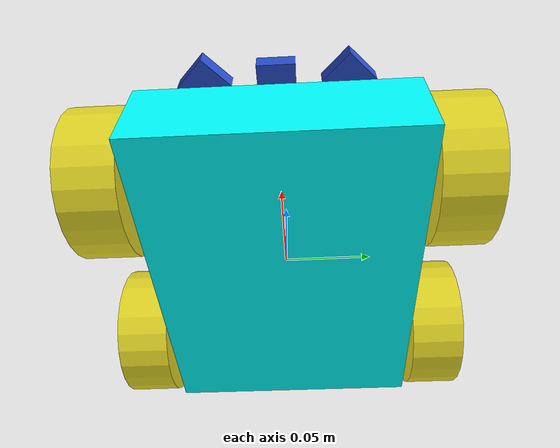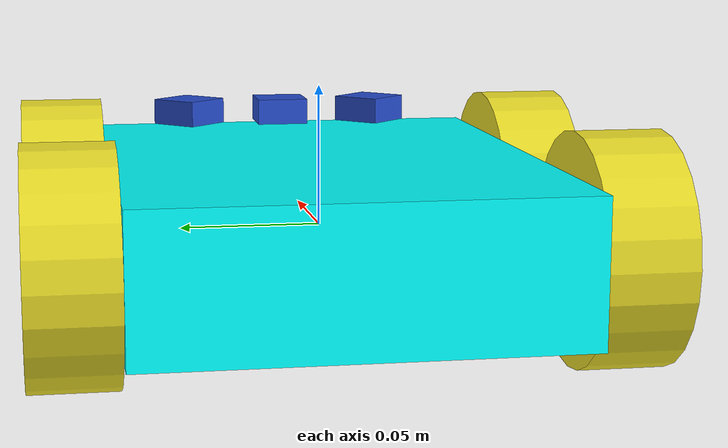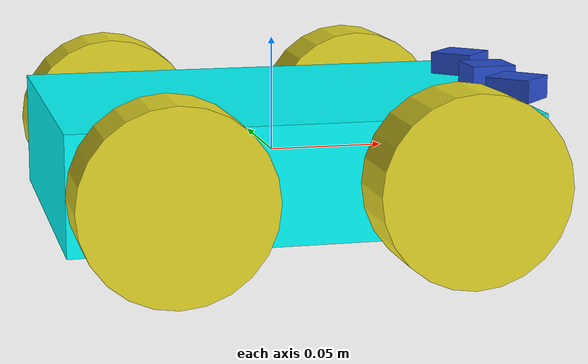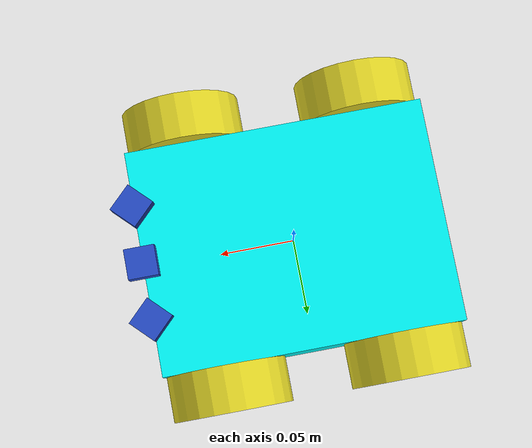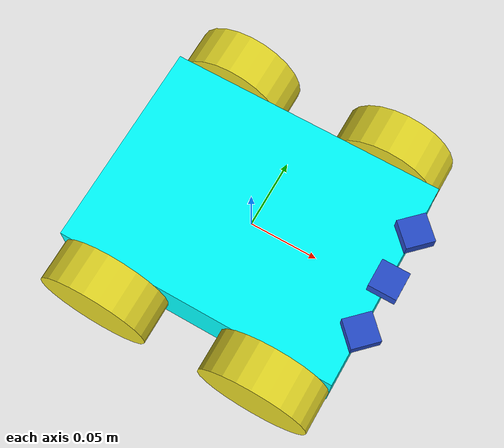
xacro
<?xml version='1.0'?>

<robot name="robot" xmlns:xacro="http://www.ros.org/wiki/xacro">

  <xacro:property name="camera_width" value="0.02"/>
  <xacro:property name="camera_length" value="0.02"/>
  <xacro:property name="camera_height" value="0.01"/>
  <xacro:property name="camera_mass" value="0.01"/>

  <!-- Inserting two cameras right and left -->

  <xacro:property name="lcam_width" value="0.02"/>
  <xacro:property name="lcam_length" value="0.02"/>
  <xacro:property name="lcam_height" value="0.01"/>
  <xacro:property name="lcam_mass" value="0.01"/>

  <xacro:property name="rcam_width" value="0.02"/>
  <xacro:property name="rcam_length" value="0.02"/>
  <xacro:property name="rcam_height" value="0.01"/>
  <xacro:property name="rcam_mass" value="0.01"/>

  <xacro:property name="chassis_width" value="0.15"/>
  <xacro:property name="chassis_length" value="0.2"/>
  <xacro:property name="chassis_height" value="0.05"/>
  <xacro:property name="chassis_mass" value="0.5"/>
  <xacro:property name="wheel_radius" value="0.04"/>
  <xacro:property name="wheel_width" value="0.03"/>
  <xacro:property name="wheel_mass" value="0.025"/>

  <xacro:include filename="$(find robbie)/urdf/macros.xacro"/>
  <xacro:include filename="$(find robbie)/urdf/materials.xacro"/>

  <link name='chassis'>
    <xacro:box_inertial name="chassis" m="${chassis_mass}" x="${chassis_length}" y="${chassis_width}" z="${chassis_height}"/>
    <collision name='chassis_collision'>
      <geometry>
        <box size="${chassis_length} ${chassis_width} ${chassis_height}"/>
      </geometry>
    </collision>
    <visual name='chassis_visual'>
      <origin xyz="0 0 0" rpy=" 0 0 0"/>
      <geometry>
        <box size="${chassis_length} ${chassis_width} ${chassis_height}"/>
      </geometry>
      <material name="Cyan">
        <color rgba="0 1.0 1.0 1.0"/>
      </material>
    </visual>
  </link>

  <link name='wheel_FR'>
    <xacro:cylinder_inertial name="wheel_FR" m="${wheel_mass}" r="${wheel_radius}" h="${wheel_width}"/>
    <collision name='wheel_FR_collision'>
      <origin xyz="0 0 0" rpy="1.5708 0 0"/>
      <geometry>
        <cylinder radius="${wheel_radius}" length="${wheel_width}"/>
      </geometry>
    </collision>
    <visual name='wheel_FR_visual'>
      <origin xyz="0 0 0" rpy="1.5708 0 0"/>
      <geometry>
        <cylinder radius="${wheel_radius}" length="${wheel_width}"/>
      </geometry>
    </visual>
  </link>

  <link name='wheel_FL'>
    <xacro:cylinder_inertial name="wheel_FL" m="${wheel_mass}" r="${wheel_radius}" h="${wheel_width}"/>
    <collision name='wheel_FL_collision'>
      <origin xyz="0 0 0" rpy="1.5708 0 0"/>
      <geometry>
        <cylinder radius="${wheel_radius}" length="${wheel_width}"/>
      </geometry>
    </collision>
    <visual name='wheel_FL_visual'>
      <origin xyz="0 0 0" rpy="1.5708 0 0"/>
      <geometry>
        <cylinder radius="${wheel_radius}" length="${wheel_width}"/>
      </geometry>
    </visual>
  </link>

  <link name='wheel_RR'>
    <xacro:cylinder_inertial name="wheel_RR" m="${wheel_mass}" r="${wheel_radius}" h="${wheel_width}"/>
    <collision name='wheel_RR_collision'>
      <origin xyz="0 0 0" rpy="1.5708 0 0"/>
      <geometry>
        <cylinder radius="${wheel_radius}" length="${wheel_width}"/>
      </geometry>
    </collision>
    <visual name='wheel_RR_visual'>
      <origin xyz="0 0 0" rpy="1.5708 0 0"/>
      <geometry>
        <cylinder radius="${wheel_radius}" length="${wheel_width}"/>
      </geometry>
    </visual>
  </link>

  <link name='wheel_RL'>
    <xacro:cylinder_inertial name="wheel_RL" m="${wheel_mass}" r="${wheel_radius}" h="${wheel_width}"/>
    <collision name='wheel_RL_collision'>
      <origin xyz="0 0 0" rpy="1.5708 0 0"/>
      <geometry>
        <cylinder radius="${wheel_radius}" length="${wheel_width}"/>
      </geometry>
    </collision>
    <visual name='wheel_RL_visual'>
      <origin xyz="0 0 0" rpy="1.5708 0 0"/>
      <geometry>
        <cylinder radius="${wheel_radius}" length="${wheel_width}"/>
      </geometry>
    </visual>
  </link>

  <link name='camera_link'>
    <xacro:box_inertial name="camera_link" m="${camera_mass}" x="${camera_width}" y="${camera_length}" z="${camera_height}"/>
    <collision name='camera_link_collision'>
      <geometry>
        <box size="${camera_length} ${camera_width} ${camera_height}"/>
      </geometry>
    </collision>
    <visual name='camera_link_visual'>
      <origin xyz="0 0 0" rpy=" 0 0 0"/>
      <geometry>
        <box size="${camera_length} ${camera_width} ${camera_height}"/>
      </geometry>
    </visual>
  </link>

  <link name='lcam_link'>
    <xacro:box_inertial name="lcam_link" m="${camera_mass}" x="${camera_width}" y="${camera_length}" z="${camera_height}"/>
    <collision name='lcam_link_collision'>
      <geometry>
        <box size="${camera_length} ${camera_width} ${camera_height}"/>
      </geometry>
    </collision>
    <visual name='lcam_link_visual'>
      <origin xyz="0 0 0" rpy=" 0 0 0"/>
      <geometry>
        <box size="${camera_length} ${camera_width} ${camera_height}"/>
      </geometry>
    </visual>
  </link>

  <link name='rcam_link'>
    <xacro:box_inertial name="rcam_link" m="${camera_mass}" x="${camera_width}" y="${camera_length}" z="${camera_height}"/>
    <collision name='rcam_link_collision'>
      <geometry>
        <box size="${camera_length} ${camera_width} ${camera_height}"/>
      </geometry>
    </collision>
    <visual name='rcam_link_visual'>
      <origin xyz="0 0 0" rpy=" 0 0 0"/>
      <geometry>
        <box size="${camera_length} ${camera_width} ${camera_height}"/>
      </geometry>
    </visual>
  </link>

  <joint name="wheel_FR_joint" type="continuous">
    <parent link="chassis"/>
    <child link="wheel_FR"/>
    <origin xyz="${chassis_length/2-wheel_radius} -${chassis_width/2+wheel_width/2} 0"
            rpy="0 0 0"/>
    <axis xyz="0 1 0"/>
  </joint>

  <joint name="wheel_FL_joint" type="continuous">
    <parent link="chassis"/>
    <child link="wheel_FL"/>
    <origin xyz="${chassis_length/2-wheel_radius} ${chassis_width/2+wheel_width/2} 0"
            rpy="0 0 0"/>
    <axis xyz="0 1 0"/>
  </joint>

  <joint name="wheel_RR_joint" type="continuous">
    <parent link="chassis"/>
    <child link="wheel_RR"/>
    <origin xyz="-${chassis_length/2-wheel_radius} -${chassis_width/2+wheel_width/2} 0"
            rpy="0 0 0"/>
    <axis xyz="0 1 0"/>
  </joint>

  <joint name="wheel_RL_joint" type="continuous">
    <parent link="chassis"/>
    <child link="wheel_RL"/>
    <origin xyz="-${chassis_length/2-wheel_radius} ${chassis_width/2+wheel_width/2} 0"
            rpy="0 0 0"/>
    <axis xyz="0 1 0"/>
  </joint>

  <joint name="camera_joint" type="fixed">
    <parent link="chassis"/>
    <child link="camera_link"/>
    <origin xyz="${chassis_length/2} 0 ${chassis_height/2+camera_height/2}"/>
  </joint>

  <joint name="lcam_joint" type="fixed">
    <parent link="chassis"/>
    <child link="lcam_link"/>
    <origin xyz="${chassis_length/2} ${chassis_width/4} ${chassis_height/2+lcam_height/2}" rpy="0 0 0.785398"/>
  </joint>

  <joint name="rcam_joint" type="fixed">
    <parent link="chassis"/>
    <child link="rcam_link"/>
    <origin xyz="${chassis_length/2} ${-chassis_width/4} ${chassis_height/2+rcam_height/2}" rpy="0 0 -0.785398"/>
  </joint>

  <gazebo reference="chassis">
    <material>Gazebo/Orange</material>
  </gazebo>

  <gazebo reference="camera_link">
    <material>Gazebo/Blue</material>
  </gazebo>

  <gazebo reference="lcam_link">
    <material>Gazebo/Blue</material>
  </gazebo>

  <gazebo reference="rcam_link">
    <material>Gazebo/Blue</material>
  </gazebo>

  <gazebo reference="wheel_FL">
    <material>Gazebo/Yellow</material>
  </gazebo>

  <gazebo reference="wheel_FR">
    <material>Gazebo/Yellow</material>
  </gazebo>

  <gazebo reference="wheel_RL">
    <material>Gazebo/Yellow</material>
  </gazebo>

  <gazebo reference="wheel_RR">
    <material>Gazebo/Yellow</material>
  </gazebo>

  <gazebo>
    <plugin name="skid_steer_drive_controller" filename="libgazebo_ros_skid_steer_drive.so">
      <updateRate>100.0</updateRate>
      <leftFrontJoint>wheel_FL_joint</leftFrontJoint>
      <rightFrontJoint>wheel_FR_joint</rightFrontJoint>
      <leftRearJoint>wheel_RL_joint</leftRearJoint>
      <rightRearJoint>wheel_RR_joint</rightRearJoint>
      <wheelSeparation>0.4</wheelSeparation>
      <wheelDiameter>0.215</wheelDiameter>
      <robotBaseFrame>base_link</robotBaseFrame>
      <torque>20</torque>
      <topicName>cmd_vel</topicName>
      <broadcastTF>false</broadcastTF>
    </plugin>
  </gazebo>

  <gazebo reference="camera_link">
    <sensor type="camera" name="camera1">
      <update_rate>25.0</update_rate>
      <camera name="head">
        <horizontal_fov>1.3962634</horizontal_fov>
        <image>
          <width>320</width>
          <height>320</height>
          <format>R8G8B8</format>
        </image>
        <clip>
          <near>0.02</near>
          <far>300</far>
        </clip>
        <noise>
          <type>gaussian</type>
          <!-- Noise is sampled independently per pixel on each frame.
              That pixel's noise value is added to each of its color
              channels, which at that point lie in the range [0,1]. -->
          <mean>0.0</mean>
          <stddev>0.007</stddev>
        </noise>
      </camera>
      <plugin name="camera_controller" filename="libgazebo_ros_camera.so">
        <alwaysOn>true</alwaysOn>
        <updateRate>0.0</updateRate>
        <cameraName>rrbot/camera1</cameraName>
        <imageTopicName>image_raw</imageTopicName>
        <cameraInfoTopicName>camera_info</cameraInfoTopicName>
        <frameName>camera_link</frameName>
        <hackBaseline>0.07</hackBaseline>
        <distortionK1>0.0</distortionK1>
        <distortionK2>0.0</distortionK2>
        <distortionK3>0.0</distortionK3>
        <distortionT1>0.0</distortionT1>
        <distortionT2>0.0</distortionT2>
      </plugin>
    </sensor>
  </gazebo>

  <gazebo reference="lcam_link">
    <sensor type="camera" name="lcam">
      <update_rate>5.0</update_rate>
      <camera name="left">
        <horizontal_fov>1.3962634</horizontal_fov>
        <image>
          <width>800</width>
          <height>800</height>
          <format>R8G8B8</format>
        </image>
        <clip>
          <near>0.02</near>
          <far>300</far>
        </clip>
        <noise>
          <type>gaussian</type>
          <!-- Noise is sampled independently per pixel on each frame.
              That pixel's noise value is added to each of its color
              channels, which at that point lie in the range [0,1]. -->
          <mean>0.0</mean>
          <stddev>0.007</stddev>
        </noise>
      </camera>
      <plugin name="lcam_controller" filename="libgazebo_ros_camera.so">
        <alwaysOn>true</alwaysOn>
        <updateRate>0.0</updateRate>
        <cameraName>rrbot/lcam</cameraName>
        <imageTopicName>image_raw</imageTopicName>
        <cameraInfoTopicName>lcam_info</cameraInfoTopicName>
        <frameName>lcam_link</frameName>
        <hackBaseline>0.07</hackBaseline>
        <distortionK1>0.0</distortionK1>
        <distortionK2>0.0</distortionK2>
        <distortionK3>0.0</distortionK3>
        <distortionT1>0.0</distortionT1>
        <distortionT2>0.0</distortionT2>
      </plugin>
    </sensor>
  </gazebo>

  <gazebo reference="rcam_link">
    <sensor type="camera" name="rcam">
      <update_rate>5.0</update_rate>
      <camera name="right">
        <horizontal_fov>1.3962634</horizontal_fov>
        <image>
          <width>800</width>
          <height>800</height>
          <format>R8G8B8</format>
        </image>
        <clip>
          <near>0.02</near>
          <far>300</far>
        </clip>
        <noise>
          <type>gaussian</type>
          <!-- Noise is sampled independently per pixel on each frame.
              That pixel's noise value is added to each of its color
              channels, which at that point lie in the range [0,1]. -->
          <mean>0.0</mean>
          <stddev>0.007</stddev>
        </noise>
      </camera>
      <plugin name="rcam_controller" filename="libgazebo_ros_camera.so">
        <alwaysOn>true</alwaysOn>
        <updateRate>0.0</updateRate>
        <cameraName>rrbot/rcam</cameraName>
        <imageTopicName>image_raw</imageTopicName>
        <cameraInfoTopicName>rcam_info</cameraInfoTopicName>
        <frameName>rcam_link</frameName>
        <hackBaseline>0.07</hackBaseline>
        <distortionK1>0.0</distortionK1>
        <distortionK2>0.0</distortionK2>
        <distortionK3>0.0</distortionK3>
        <distortionT1>0.0</distortionT1>
        <distortionT2>0.0</distortionT2>
      </plugin>
    </sensor>
  </gazebo>

</robot>
